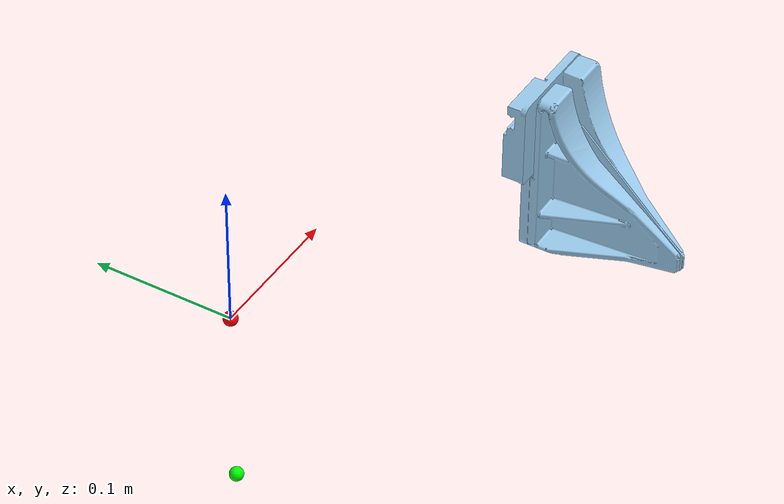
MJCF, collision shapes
<mujoco model="linear_4310_d405">
  <compiler angle="radian" meshdir="assets"/>

  <asset>
    <mesh name="gripper" file="gripper.stl"/>
    <mesh name="tip_left" file="tip_left.stl"/>
    <mesh name="tip_right" file="tip_right.stl"/>
    <mesh name="camera_bracket_for_D405_linear_4310_" file="d405/camera_bracket_for_D405_linear_4310_.stl"/>
    <mesh name="Cable_holder" file="d405/Cable_holder.stl"/>
    <mesh name="D405_with_depth_" file="d405/D405_with_depth_.stl"/>
    <mesh name="Part_2" file="d405/Part_2.stl"/>
  </asset>

  <worldbody>
    <body name="gripper" pos="0 0 0" quat="1 0 0 0">
      <inertial pos="-3.57066e-05 0.000249371 -0.0293133" quat="0.667981 0.744113 -0.00433092 0.00882801" mass="0.553219" diaginertia="0.000409686 0.000369758 0.000324415"/>
      <geom pos="-0.014 -0.0463995 0.0731" quat="1 0 0 0" type="mesh" rgba="0.109804 0.286275 0.0117647 1" mesh="gripper" contype="0" conaffinity="0"/>
      <!-- Intel RealSense D405 on its bracket, rigidly fastened to the gripper. -->
      <geom pos="-0.0237499999998 0.026 -0.0450000872386" quat="0.707105482511 0 -0.707108079859 0" type="mesh" rgba="0.615686 0.811765 0.929412 1" mesh="camera_bracket_for_D405_linear_4310_" contype="0" conaffinity="0"/>
      <geom pos="-0.0237499999998 0.026 -0.0450000872386" quat="0.707105482511 0 -0.707108079859 0" type="mesh" rgba="0.647059 0.647059 0.647059 1" mesh="Cable_holder" contype="0" conaffinity="0"/>
      <geom pos="-0.0704349787482 0.00899992343196 -0.0770059620768" quat="0.690344657757 -0.153049839965 -0.153047304185 0.690345219926" type="mesh" rgba="0.615686 0.811765 0.929412 1" mesh="D405_with_depth_" contype="0" conaffinity="0"/>
      <geom pos="-0.0704349787482 0.00899992343196 -0.0770059620768" quat="0.690344657757 -0.153049839965 -0.153047304185 0.690345219926" type="mesh" rgba="0.498039 0.498039 0.498039 1" mesh="Part_2" contype="0" conaffinity="0"/>
      <site name="tcp_site" pos="0 0 0" quat="0 1 0 0" size="0.005" rgba="1 0 0 1"/>
      <site name="grasp_site" pos="0 0 -0.1347" quat="0 1 0 0" size="0.005" rgba="0 1 0 1"/>
      <body name="tip_left" pos="-0.0239931 0.0445119 -0.0566829" quat="1 0 0 0">
        <inertial pos="0.014584 -0.042586 -0.0228318" quat="0.657721 -0.57927 0.480962 -0.0229274" mass="0.069657" diaginertia="2.79862e-05 5.94605e-05 6.18569e-05"/>
        <joint name="joint7" pos="0 0 0" type="slide" axis="0 -1 0" range="0 0.04695"/>
        <geom pos="0.00999321 -0.0914614 0.129783" quat="1 0 0 0" type="mesh" rgba="0.596078 0.788235 0.921569 1" mesh="tip_left"/>
      </body>
      <body name="tip_right" pos="0.0239931 -0.0445119 -0.0566829" quat="1 0 0 0">
        <inertial pos="-0.014584 0.042586 -0.0228318" quat="0.480962 0.0229274 0.657721 0.57927" mass="0.069657" diaginertia="2.79862e-05 5.94605e-05 6.18569e-05"/>
        <joint name="joint8" pos="0 0 0" type="slide" axis="0 1 0" range="0 0.04695"/>
        <geom pos="-0.0379932 -0.00133753 0.129783" quat="1 0 0 0" type="mesh" rgba="0.596078 0.788235 0.921569 1" mesh="tip_right"/>
      </body>
      <body name="camera" pos="-0.07043497875 -7.656797949e-08 -0.07700592902" quat="0.153050756 0.690344455 0.690345017 0.15304822">
        <inertial pos="0 0 0" quat="1 0 0 0" mass="1e-09" diaginertia="4e-14 4e-14 4e-14"/>
      </body>
    </body>
  </worldbody>

  <equality>
    <joint joint1="joint7" joint2="joint8" polycoef="0 1 0 0 0"/>
  </equality>

  <contact>
    <exclude body1="gripper" body2="tip_left"/>
    <exclude body1="gripper" body2="tip_right"/>
    <exclude body1="tip_left" body2="tip_right"/>
  </contact>
</mujoco>
